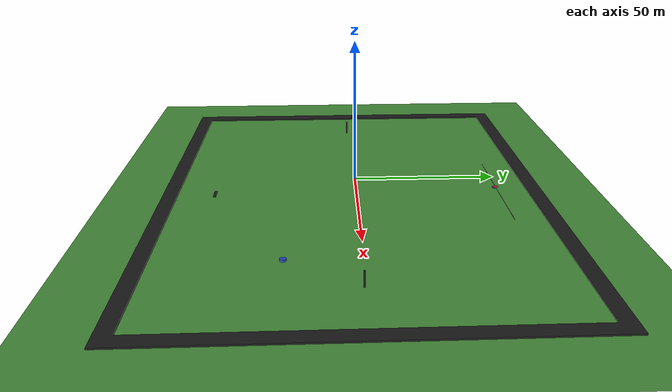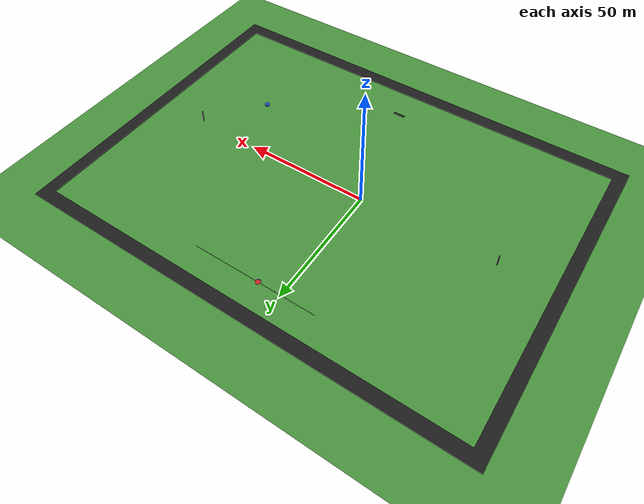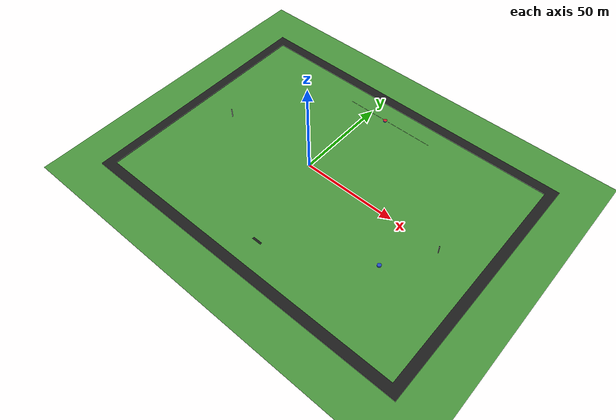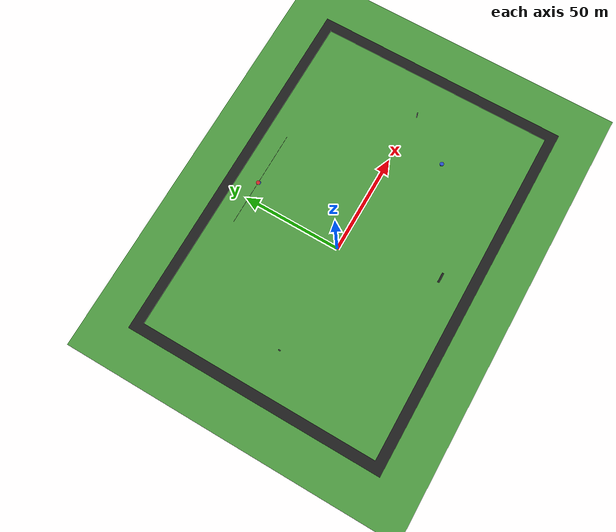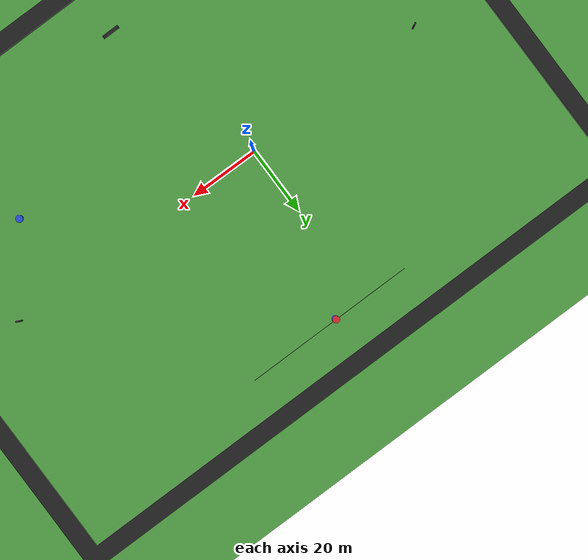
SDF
<sdf version="1.7">
 <world name="default">
  <physics name="default_physics" default="0" type="ode">
   <ode>
    <solver>
     <type>quick</type>
     <iters>100</iters>
     <sor>1</sor>
     <use_dynamic_moi_rescaling>0</use_dynamic_moi_rescaling>
    </solver>
    <constraints>
     <cfm>0</cfm>
     <erp>0.2</erp>
     <contact_max_correcting_vel>0.1</contact_max_correcting_vel>
     <contact_surface_layer>0</contact_surface_layer>
    </constraints>
   </ode>
   <real_time_factor>1</real_time_factor>
   <max_step_size>0.001</max_step_size>
   <real_time_update_rate>1000</real_time_update_rate>
  </physics>
  <scene>
   <sky><clouds><speed>5</speed></clouds></sky>
   <ambient>0.95 0.95 0.95 1</ambient>
   <background>0.3 0.3 0.3 1</background>
   <shadows>1</shadows>
  </scene>
  <gravity>0 0 -9.8</gravity>
  <magnetic_field>6e-06 2.3e-05 -4.2e-05</magnetic_field>
  <atmosphere type="adiabatic"/>
  <audio><device>default</device></audio>
  <spherical_coordinates>
   <surface_model>EARTH_WGS84</surface_model>
   <latitude_deg>0</latitude_deg>
   <longitude_deg>0</longitude_deg>
   <elevation>0</elevation>
   <heading_deg>0</heading_deg>
  </spherical_coordinates>
  <model name="ground_plane">
   <static>1</static>
   <link name="link">
    <collision name="collision">
     <geometry><plane><normal>0 0 1</normal><size>50000 50000</size></plane></geometry>
     <surface><friction><ode><mu>1</mu><mu2>1</mu2></ode></friction></surface>
    </collision>
    <visual name="grass">
     <pose>0 0 -0.1 0 -0 0</pose>
     <cast_shadows>0</cast_shadows>
     <geometry><plane><normal>0 0 1</normal><size>10000 10000</size></plane></geometry>
     <material>
      <script><uri>file://media/materials/scripts/gazebo.material</uri><name>Gazebo/Grass</name></script>
     </material>
    </visual>
    <kinematic>1</kinematic>
   </link>
  </model>
  <light name="sun" type="directional">
   <pose>1865.5 2039.39 10 0 -0 0</pose>
   <diffuse>0.8 0.8 0.8 1</diffuse>
   <specular>0.2 0.2 0.2 1</specular>
   <attenuation>
    <range>1000</range>
    <constant>0.9</constant>
    <linear>0.01</linear>
    <quadratic>0.001</quadratic>
   </attenuation>
   <direction>-0.5 0.1 -0.9</direction>
   <spot><inner_angle>0</inner_angle><outer_angle>0</outer_angle><falloff>0</falloff></spot>
  </light>
  <model name="alan">
   <pose>11.5446 -0.896078 -0.088418 0 -0 0</pose>
   <static>1</static>
   <link name="link">
    <visual name="visual">
     <geometry><mesh><scale>1 1 1</scale><uri>model://alan/meshes/alan_uiha.stl</uri></mesh></geometry>
     <material><script><name>Gazebo/Black</name><uri>__default__</uri></script></material>
    </visual>
   </link>
  </model>
  <model name="daire">
   <pose>9.38504 49.0598 0.027299 0 -0 0</pose>
   <static>1</static>
   <link name="link">
    <visual name="visual">
     <geometry><mesh><scale>1 1 1e-06</scale><uri>model://daire/meshes/daire_2x2.stl</uri></mesh></geometry>
     <material><script><name>Gazebo/Red</name><uri>__default__</uri></script></material>
    </visual>
   </link>
  </model>
  <model name="su_alanı">
   <pose>60.8323 -22.9987 -0.101596 0 -0 0</pose>
   <static>1</static>
   <link name="link">
    <visual name="visual">
     <geometry><mesh><scale>1 1 1</scale><uri>model://su_alanı/meshes/su_alanı.stl</uri></mesh></geometry>
     <material><script><name>Gazebo/Blue</name><uri>__default__</uri></script></material>
    </visual>
   </link>
  </model>
  <model name="su_alanı_0">
   <pose>9.49071 48.7968 -0.787891 0 -0 0</pose>
   <static>1</static>
   <link name="link">
    <visual name="visual">
     <geometry><mesh><scale>1 1 1</scale><uri>model://su_alanı/meshes/su_alanı.stl</uri></mesh></geometry>
     <material><script><name>Gazebo/Blue</name><uri>__default__</uri></script></material>
    </visual>
   </link>
  </model>
 </world>
</sdf>
